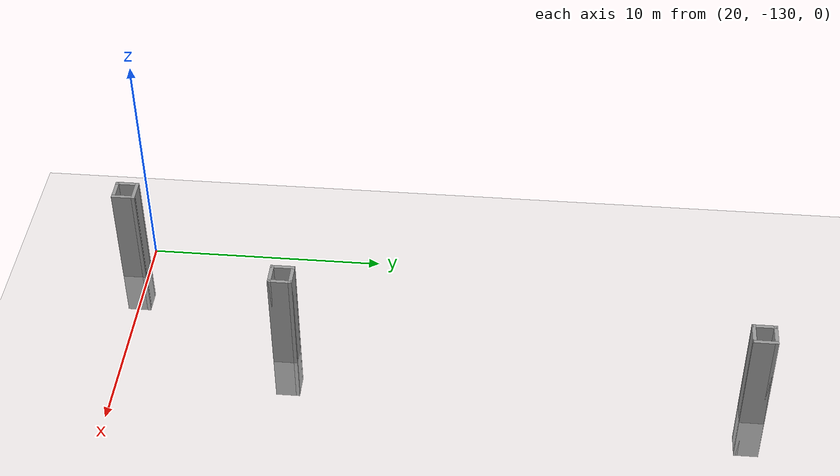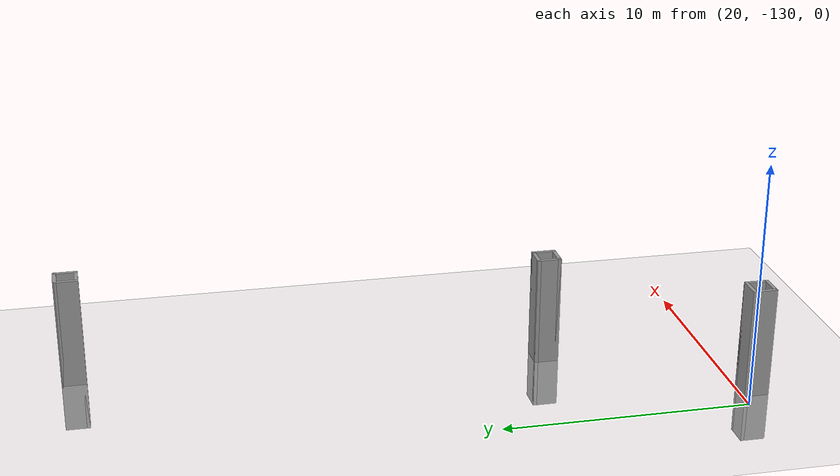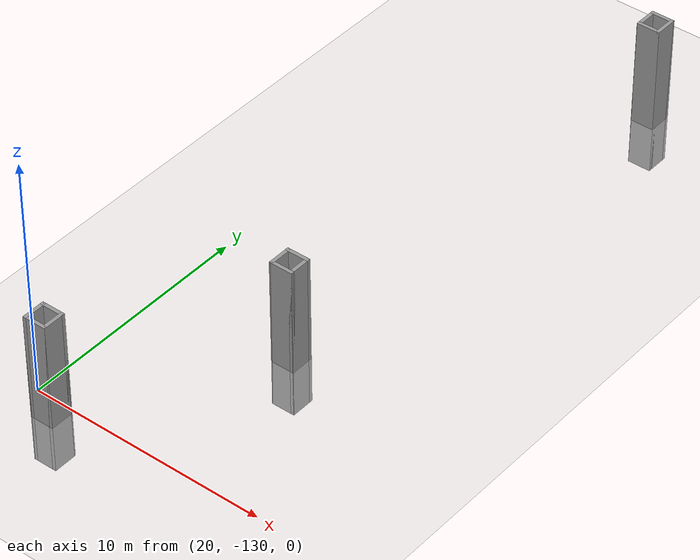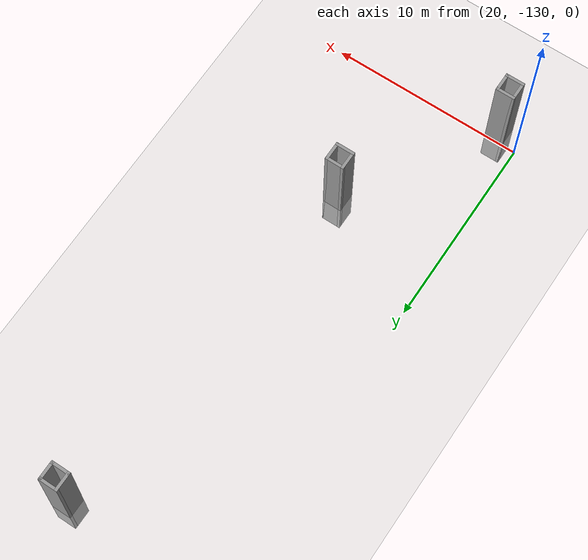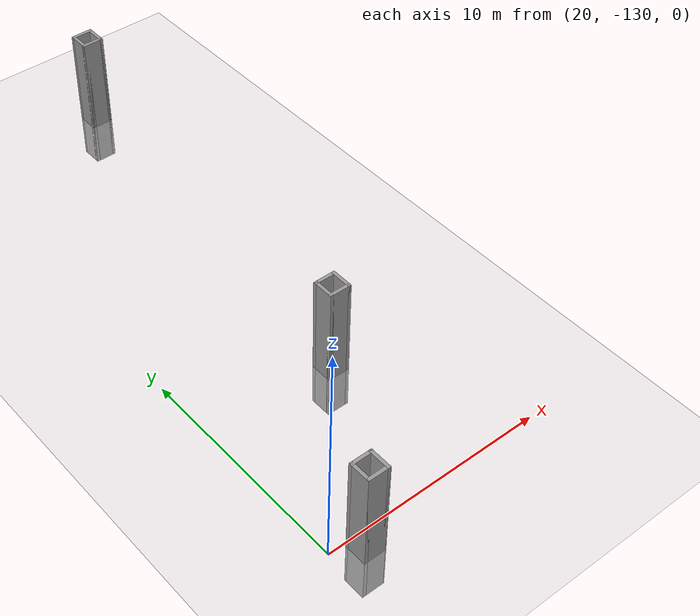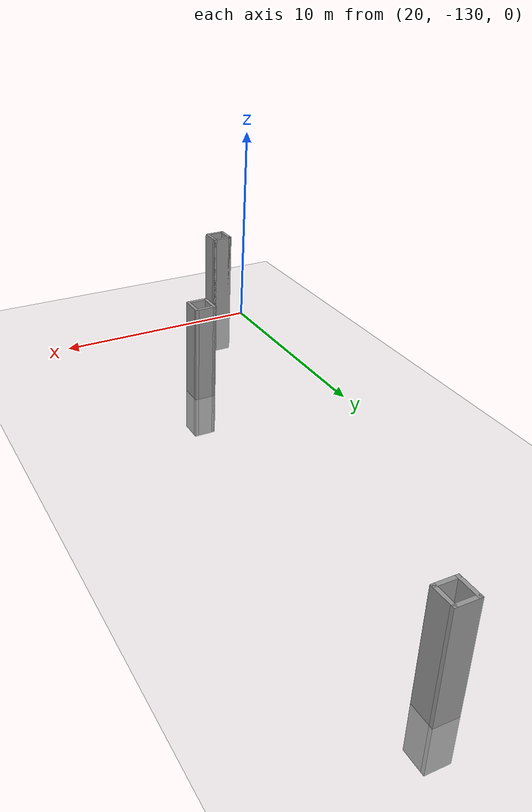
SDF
<sdf version="1.6">
 <world name="default">
  <model name="ground_plane">
   <static>1</static>
   <link name="link">
    <collision name="collision">
     <geometry><plane><normal>0 0 1</normal><size>320 320</size></plane></geometry>
     <surface>
      <contact><collide_bitmask>65535</collide_bitmask></contact>
      <friction><ode><mu>100</mu><mu2>50</mu2></ode></friction>
     </surface>
    </collision>
    <visual name="visual">
     <cast_shadows>0</cast_shadows>
     <geometry><plane><normal>0 0 1</normal><size>320 320</size></plane></geometry>
     <material>
      <script><uri>file://media/materials/scripts/gazebo.material</uri><name>Gazebo/Grey</name></script>
     </material>
    </visual>
   </link>
  </model>
  <model name="box_1mx1m_24">
   <pose>21.209 -130.593 0 0 -0 0</pose>
   <link name="Wall_10">
    <collision name="Wall_10_Collision">
     <geometry><box><size>1 0.15 6.555</size></box></geometry>
     <pose>0 0 1.25 0 -0 0</pose>
    </collision>
    <visual name="Wall_10_Visual">
     <pose>0 0 1.25 0 -0 0</pose>
     <geometry><box><size>1 0.15 6.555</size></box></geometry>
     <material>
      <script><uri>file://media/materials/scripts/gazebo.material</uri><name>Gazebo/Grey</name></script>
      <ambient>1 1 1 1</ambient>
     </material>
     <meta><layer>0</layer></meta>
    </visual>
    <pose>-0.425 0 0 0 -0 -1.5708</pose>
   </link>
   <link name="Wall_11">
    <collision name="Wall_11_Collision">
     <geometry><box><size>1 0.15 6.555</size></box></geometry>
     <pose>0 0 1.25 0 -0 0</pose>
    </collision>
    <visual name="Wall_11_Visual">
     <pose>0 0 1.25 0 -0 0</pose>
     <geometry><box><size>1 0.15 6.555</size></box></geometry>
     <material>
      <script><uri>file://media/materials/scripts/gazebo.material</uri><name>Gazebo/Grey</name></script>
      <ambient>1 1 1 1</ambient>
     </material>
     <meta><layer>0</layer></meta>
    </visual>
    <pose>0 -0.425 0 0 -0 0</pose>
   </link>
   <link name="Wall_12">
    <collision name="Wall_12_Collision">
     <geometry><box><size>1 0.15 6.555</size></box></geometry>
     <pose>0 0 1.25 0 -0 0</pose>
    </collision>
    <visual name="Wall_12_Visual">
     <pose>0 0 1.25 0 -0 0</pose>
     <geometry><box><size>1 0.15 6.555</size></box></geometry>
     <material>
      <script><uri>file://media/materials/scripts/gazebo.material</uri><name>Gazebo/Grey</name></script>
      <ambient>1 1 1 1</ambient>
     </material>
     <meta><layer>0</layer></meta>
    </visual>
    <pose>0.425 0 0 0 -0 1.5708</pose>
   </link>
   <link name="Wall_13">
    <collision name="Wall_13_Collision">
     <geometry><box><size>1 0.15 6.555</size></box></geometry>
     <pose>0 0 1.25 0 -0 0</pose>
    </collision>
    <visual name="Wall_13_Visual">
     <pose>0 0 1.25 0 -0 0</pose>
     <geometry><box><size>1 0.15 6.555</size></box></geometry>
     <material>
      <script><uri>file://media/materials/scripts/gazebo.material</uri><name>Gazebo/Grey</name></script>
      <ambient>1 1 1 1</ambient>
     </material>
     <meta><layer>0</layer></meta>
    </visual>
    <pose>0 0.425 0 0 -0 3.14159</pose>
   </link>
   <static>1</static>
  </model>
  <model name="box_1mx1m_25">
   <pose>25.803 -123.232 0 0 -0 0</pose>
   <link name="Wall_10">
    <collision name="Wall_10_Collision">
     <geometry><box><size>1 0.15 6.555</size></box></geometry>
     <pose>0 0 1.25 0 -0 0</pose>
    </collision>
    <visual name="Wall_10_Visual">
     <pose>0 0 1.25 0 -0 0</pose>
     <geometry><box><size>1 0.15 6.555</size></box></geometry>
     <material>
      <script><uri>file://media/materials/scripts/gazebo.material</uri><name>Gazebo/Grey</name></script>
      <ambient>1 1 1 1</ambient>
     </material>
     <meta><layer>0</layer></meta>
    </visual>
    <pose>-0.425 0 0 0 -0 -1.5708</pose>
   </link>
   <link name="Wall_11">
    <collision name="Wall_11_Collision">
     <geometry><box><size>1 0.15 6.555</size></box></geometry>
     <pose>0 0 1.25 0 -0 0</pose>
    </collision>
    <visual name="Wall_11_Visual">
     <pose>0 0 1.25 0 -0 0</pose>
     <geometry><box><size>1 0.15 6.555</size></box></geometry>
     <material>
      <script><uri>file://media/materials/scripts/gazebo.material</uri><name>Gazebo/Grey</name></script>
      <ambient>1 1 1 1</ambient>
     </material>
     <meta><layer>0</layer></meta>
    </visual>
    <pose>0 -0.425 0 0 -0 0</pose>
   </link>
   <link name="Wall_12">
    <collision name="Wall_12_Collision">
     <geometry><box><size>1 0.15 6.555</size></box></geometry>
     <pose>0 0 1.25 0 -0 0</pose>
    </collision>
    <visual name="Wall_12_Visual">
     <pose>0 0 1.25 0 -0 0</pose>
     <geometry><box><size>1 0.15 6.555</size></box></geometry>
     <material>
      <script><uri>file://media/materials/scripts/gazebo.material</uri><name>Gazebo/Grey</name></script>
      <ambient>1 1 1 1</ambient>
     </material>
     <meta><layer>0</layer></meta>
    </visual>
    <pose>0.425 0 0 0 -0 1.5708</pose>
   </link>
   <link name="Wall_13">
    <collision name="Wall_13_Collision">
     <geometry><box><size>1 0.15 6.555</size></box></geometry>
     <pose>0 0 1.25 0 -0 0</pose>
    </collision>
    <visual name="Wall_13_Visual">
     <pose>0 0 1.25 0 -0 0</pose>
     <geometry><box><size>1 0.15 6.555</size></box></geometry>
     <material>
      <script><uri>file://media/materials/scripts/gazebo.material</uri><name>Gazebo/Grey</name></script>
      <ambient>1 1 1 1</ambient>
     </material>
     <meta><layer>0</layer></meta>
    </visual>
    <pose>0 0.425 0 0 -0 3.14159</pose>
   </link>
   <static>1</static>
  </model>
  <model name="box_1mx1m_27">
   <pose>27.5574 -104.064 0 0 -0 0</pose>
   <link name="Wall_10">
    <collision name="Wall_10_Collision">
     <geometry><box><size>1 0.15 6.555</size></box></geometry>
     <pose>0 0 1.25 0 -0 0</pose>
    </collision>
    <visual name="Wall_10_Visual">
     <pose>0 0 1.25 0 -0 0</pose>
     <geometry><box><size>1 0.15 6.555</size></box></geometry>
     <material>
      <script><uri>file://media/materials/scripts/gazebo.material</uri><name>Gazebo/Grey</name></script>
      <ambient>1 1 1 1</ambient>
     </material>
     <meta><layer>0</layer></meta>
    </visual>
    <pose>-0.425 0 0 0 -0 -1.5708</pose>
   </link>
   <link name="Wall_11">
    <collision name="Wall_11_Collision">
     <geometry><box><size>1 0.15 6.555</size></box></geometry>
     <pose>0 0 1.25 0 -0 0</pose>
    </collision>
    <visual name="Wall_11_Visual">
     <pose>0 0 1.25 0 -0 0</pose>
     <geometry><box><size>1 0.15 6.555</size></box></geometry>
     <material>
      <script><uri>file://media/materials/scripts/gazebo.material</uri><name>Gazebo/Grey</name></script>
      <ambient>1 1 1 1</ambient>
     </material>
     <meta><layer>0</layer></meta>
    </visual>
    <pose>0 -0.425 0 0 -0 0</pose>
   </link>
   <link name="Wall_12">
    <collision name="Wall_12_Collision">
     <geometry><box><size>1 0.15 6.555</size></box></geometry>
     <pose>0 0 1.25 0 -0 0</pose>
    </collision>
    <visual name="Wall_12_Visual">
     <pose>0 0 1.25 0 -0 0</pose>
     <geometry><box><size>1 0.15 6.555</size></box></geometry>
     <material>
      <script><uri>file://media/materials/scripts/gazebo.material</uri><name>Gazebo/Grey</name></script>
      <ambient>1 1 1 1</ambient>
     </material>
     <meta><layer>0</layer></meta>
    </visual>
    <pose>0.425 0 0 0 -0 1.5708</pose>
   </link>
   <link name="Wall_13">
    <collision name="Wall_13_Collision">
     <geometry><box><size>1 0.15 6.555</size></box></geometry>
     <pose>0 0 1.25 0 -0 0</pose>
    </collision>
    <visual name="Wall_13_Visual">
     <pose>0 0 1.25 0 -0 0</pose>
     <geometry><box><size>1 0.15 6.555</size></box></geometry>
     <material>
      <script><uri>file://media/materials/scripts/gazebo.material</uri><name>Gazebo/Grey</name></script>
      <ambient>1 1 1 1</ambient>
     </material>
     <meta><layer>0</layer></meta>
    </visual>
    <pose>0 0.425 0 0 -0 3.14159</pose>
   </link>
   <static>1</static>
  </model>
 </world>
</sdf>
